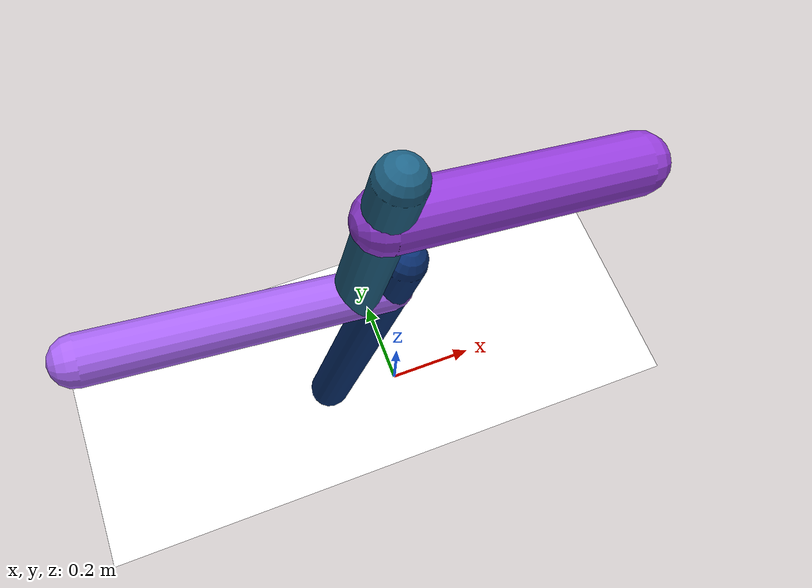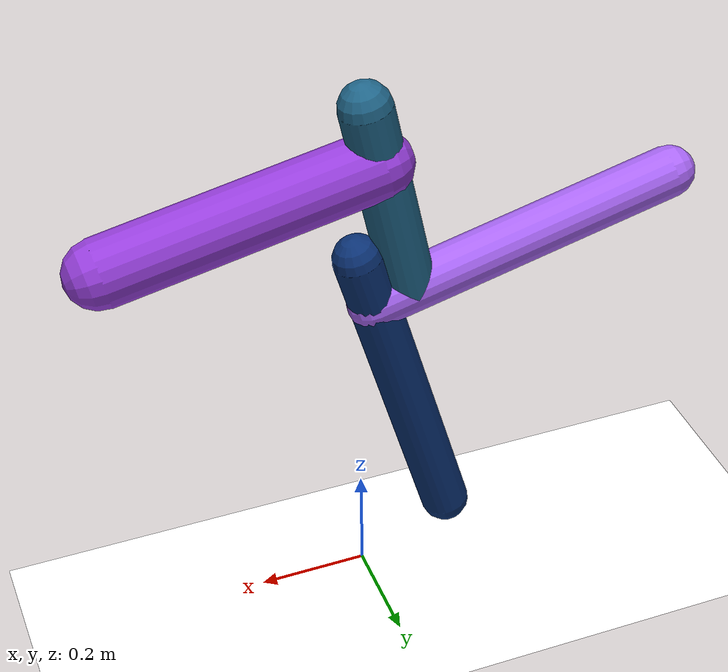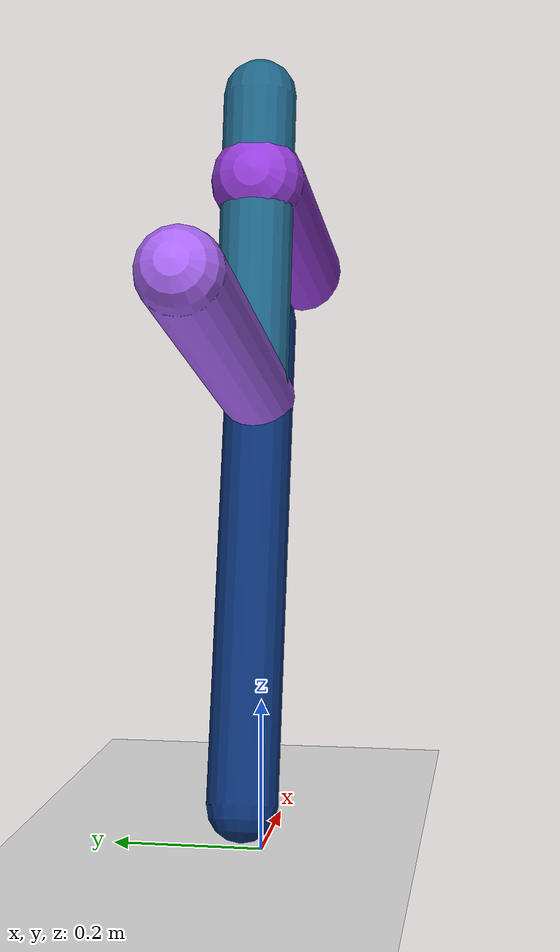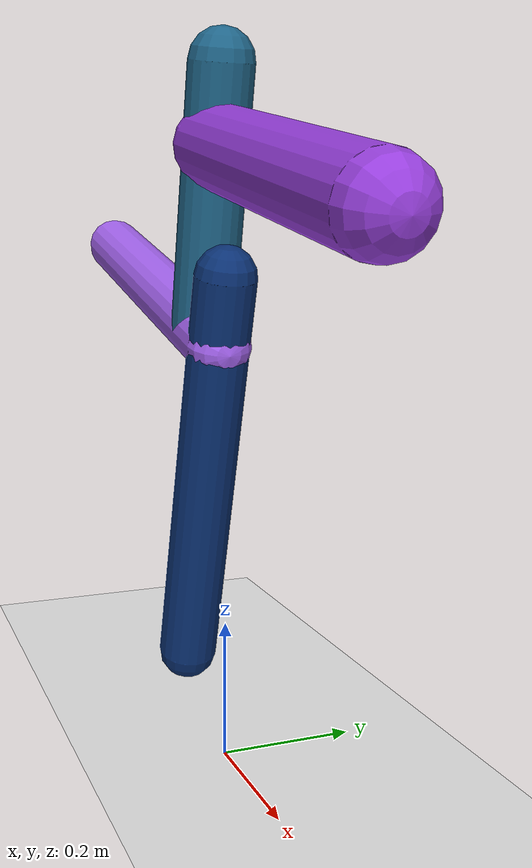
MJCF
<mujoco model="morphology">
  <option timestep="0.01"/>
  <default>
    <default class="/"/>
  </default>
  <asset>
    <texture name="texplane" type="2d" builtin="checker" rgb1="0.1 0.2 0.3" rgb2="0.2 0.3 0.4" width="300" height="300"/>
    <material name="MatPlane" class="/" texture="texplane" texrepeat="20 20" specular="1" shininess="1" reflectance="0.5"/>
  </asset>
  <worldbody>
    <light name="//unnamed_light_0" class="/" directional="true" pos="0 0 1.5" dir="0 0 -1.3" cutoff="1e+02" exponent="1" diffuse="1 1 1" specular="0.1 0.1 0.1"/>
    <geom name="ground" class="/" type="plane" size="15 15 0.5" material="MatPlane" rgba="1 1 1 1"/>
    <body name="body" pos="0 0 0.7">
      <geom name="geom0" class="/" type="capsule" contype="1" conaffinity="1" condim="3" size="0.045" rgba="0.038 0.19 0.45 1" friction="0.4 0.1 0.1" fromto="0 0 0 -0.17 0 -0.6"/>
      <body name="body1" pos="-0.027 0 -0.098">
        <geom name="geom1" class="/" type="capsule" contype="1" conaffinity="1" condim="3" size="0.047" rgba="0.66 0.4 0.96 1" friction="0.4 0.1 0.1" fromto="0 0 0 -0.56 0 0.14"/>
        <body name="body2" pos="-0.068 0 0.018">
          <geom name="geom2" class="/" type="capsule" contype="1" conaffinity="1" condim="3" size="0.047" rgba="0.12 0.39 0.53 1" friction="0.4 0.1 0.1" fromto="0 0 0 0.078 0 0.37"/>
          <body name="body3" pos="0.055 0 0.26">
            <geom name="geom3" class="/" type="capsule" contype="1" conaffinity="1" condim="3" size="0.06" rgba="0.58 0.24 0.85 1" friction="0.4 0.1 0.1" fromto="0 0 0 0.48 0 -0.097"/>
            <joint name="joint3" class="/" type="hinge" axis="0 1 0" limited="true" stiffness="20" range="-42 42" armature="0.1" damping="2"/>
          </body>
          <joint name="joint2" class="/" type="hinge" axis="0 1 0" limited="true" stiffness="20" range="-41 41" armature="0.1" damping="2"/>
        </body>
        <joint name="joint1" class="/" type="hinge" axis="0 1 0" limited="true" stiffness="20" range="-62 62" armature="0.1" damping="2"/>
      </body>
      <joint name="rootx" class="/" type="slide" axis="1 0 0" limited="false" stiffness="0" armature="0" damping="0"/>
      <joint name="rootz" class="/" type="slide" axis="0 0 1" limited="false" stiffness="0" armature="0" damping="0"/>
      <joint name="rooty" class="/" type="hinge" axis="0 1 0" limited="false" stiffness="0" armature="0" damping="0"/>
    </body>
  </worldbody>
  <actuator>
    <motor name="motor3" class="/" ctrllimited="true" ctrlrange="-1 1" gear="1.9e+02" joint="joint3"/>
    <motor name="motor2" class="/" ctrllimited="true" ctrlrange="-1 1" gear="1.5e+02" joint="joint2"/>
    <motor name="motor1" class="/" ctrllimited="true" ctrlrange="-1 1" gear="1.6e+02" joint="joint1"/>
  </actuator>
  <sensor>
    <subtreelinvel name="velocity" body="body"/>
  </sensor>
</mujoco>
